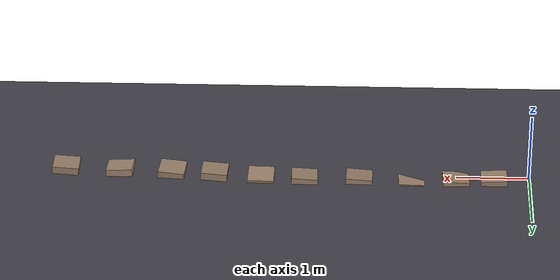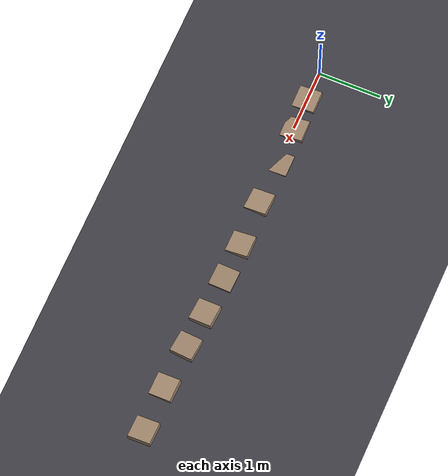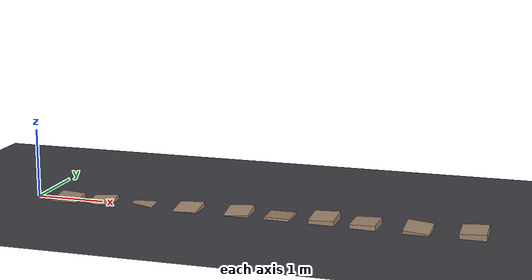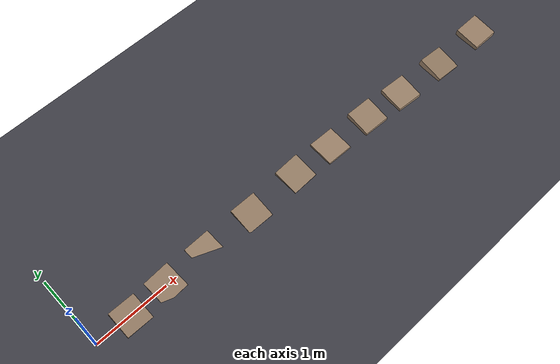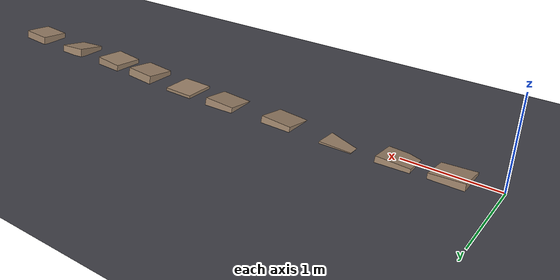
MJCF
<mujoco model="cvae_easy">
  <worldbody>
    <geom name="ground" type="plane" size="30 30 0.1" rgba="0.25 0.25 0.28 1"/>
    <geom name="stone0" type="box" size="0.180 0.180 0.050" pos="0.480 -0.002 -0.014" quat="0.9973 0.0695 0.0254 -0.0005" rgba="0.62 0.52 0.42 1"/>
    <geom name="stone1" type="box" size="0.180 0.180 0.050" pos="1.007 0.018 -0.026" quat="0.9965 0.0768 -0.0299 0.0168" rgba="0.62 0.52 0.42 1"/>
    <geom name="stone2" type="box" size="0.180 0.180 0.050" pos="1.615 0.021 -0.054" quat="0.9992 0.0372 -0.0155 0.0020" rgba="0.62 0.52 0.42 1"/>
    <geom name="stone3" type="box" size="0.180 0.180 0.050" pos="2.332 0.004 -0.017" quat="0.9960 0.0830 -0.0295 -0.0146" rgba="0.62 0.52 0.42 1"/>
    <geom name="stone4" type="box" size="0.180 0.180 0.050" pos="3.084 0.020 -0.008" quat="0.9963 0.0786 -0.0347 0.0080" rgba="0.62 0.52 0.42 1"/>
    <geom name="stone5" type="box" size="0.180 0.180 0.050" pos="3.681 0.005 -0.022" quat="0.9999 0.0028 -0.0018 -0.0124" rgba="0.62 0.52 0.42 1"/>
    <geom name="stone6" type="box" size="0.180 0.180 0.050" pos="4.320 -0.025 0.029" quat="0.9975 0.0605 -0.0271 -0.0249" rgba="0.62 0.52 0.42 1"/>
    <geom name="stone7" type="box" size="0.180 0.180 0.050" pos="4.906 -0.071 0.018" quat="0.9983 0.0298 -0.0292 -0.0401" rgba="0.62 0.52 0.42 1"/>
    <geom name="stone8" type="box" size="0.180 0.180 0.050" pos="5.625 -0.101 0.010" quat="0.9957 0.0845 0.0347 -0.0176" rgba="0.62 0.52 0.42 1"/>
    <geom name="stone9" type="box" size="0.180 0.180 0.050" pos="6.371 -0.106 0.043" quat="0.9982 0.0516 -0.0308 -0.0046" rgba="0.62 0.52 0.42 1"/>
  </worldbody>
</mujoco>
